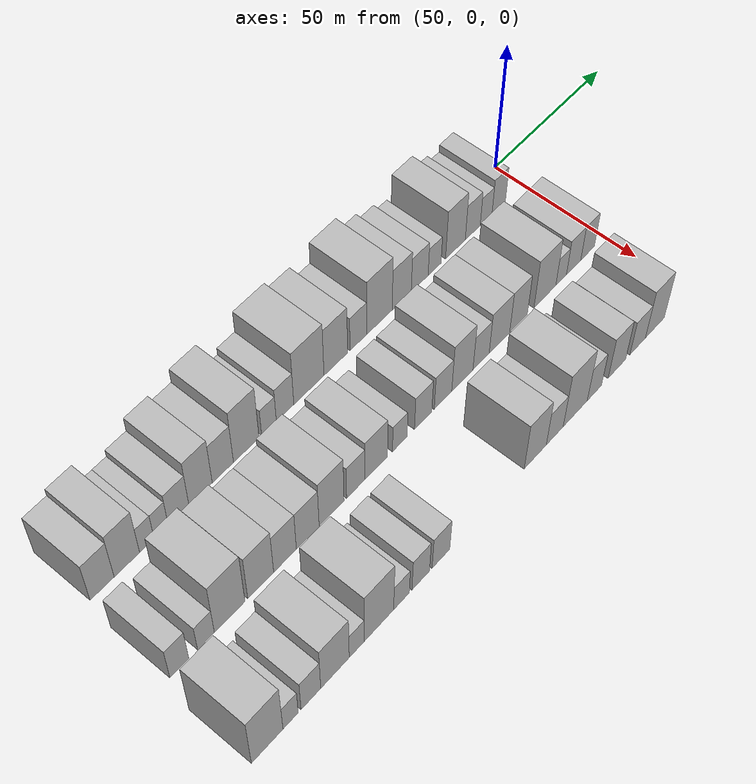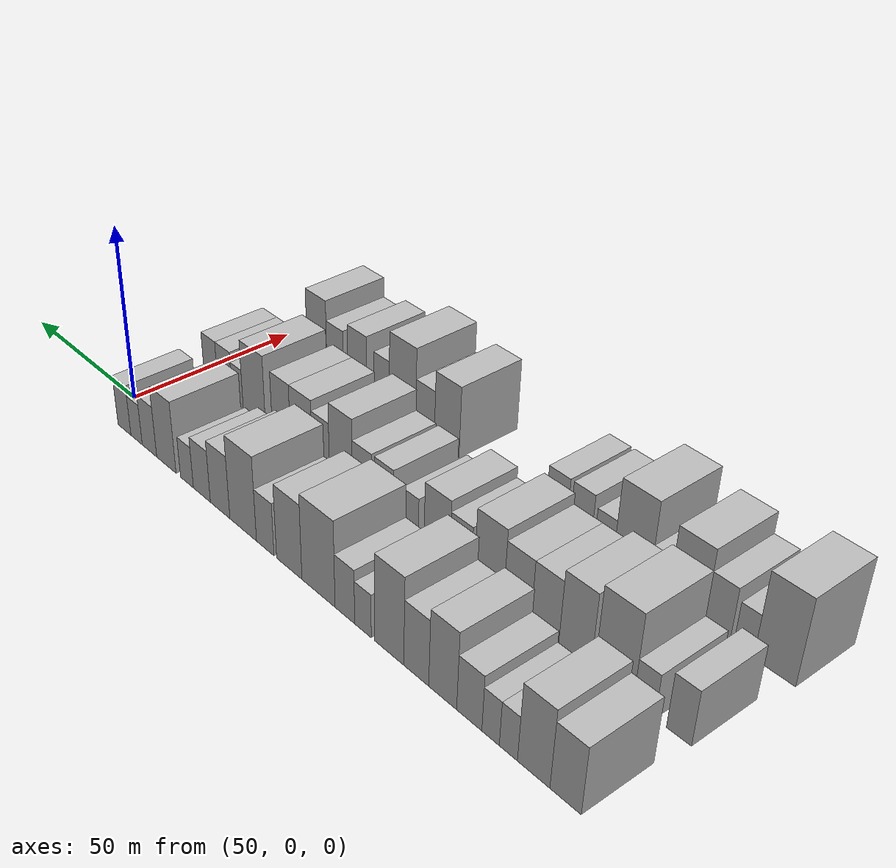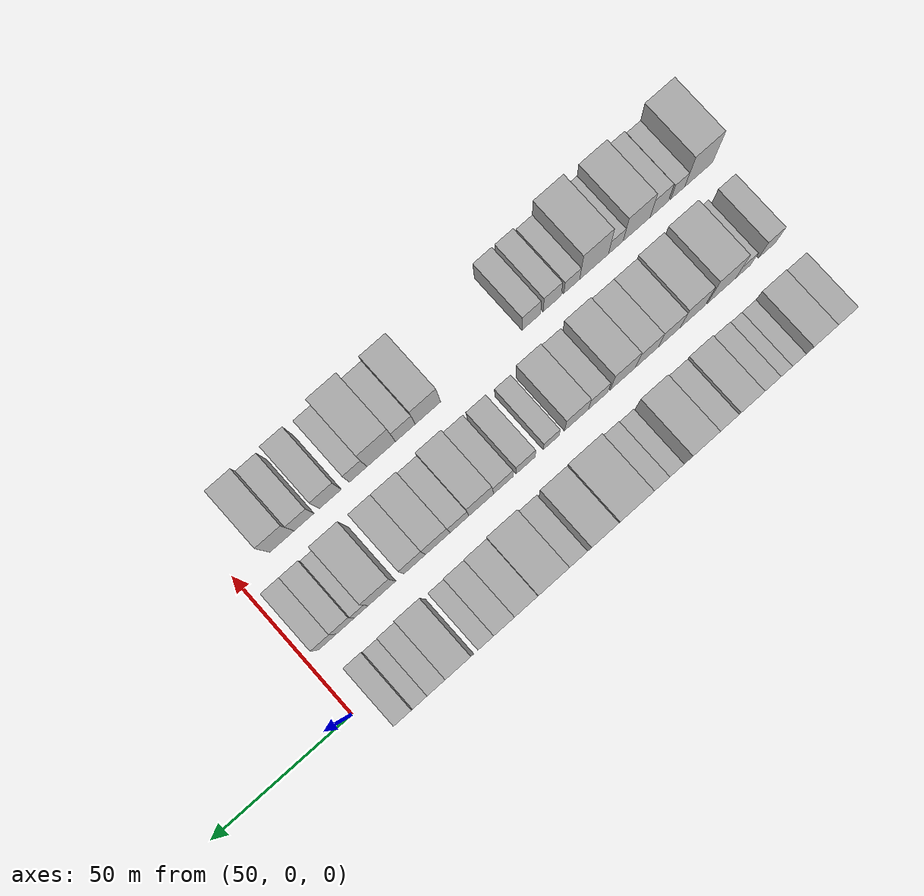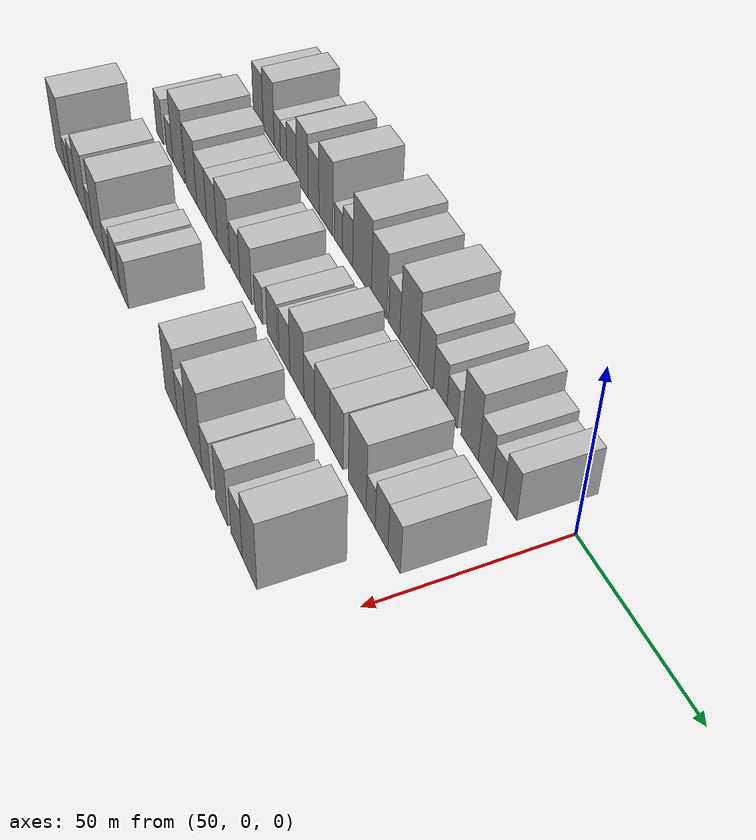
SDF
<sdf version="1.6">
 <world name="default">
  <model name="building_19">
   <static>1</static>
   <pose>50.0000 -168.9221 0 0.000000 0.000000 0.000000</pose>
   <link name="link">
    <pose>0 0 9.00 0 0 0</pose>
    <collision name="collision"><geometry><box><size>20.0000 8.2570 18.0000</size></box></geometry></collision>
    <visual name="visual">
     <cast_shadows>0</cast_shadows>
     <geometry><box><size>20.0000 8.2570 18.0000</size></box></geometry>
     <material>
      <script>
       <uri>model://HANNAS_wall/materials/scripts</uri>
       <uri>model://HANNAS_wall/materials/textures</uri>
       <name>vrc/HANNAS_wall</name>
      </script>
     </material>
    </visual>
   </link>
  </model>
  <model name="building_20">
   <static>1</static>
   <pose>50.0000 -160.3604 0 0.000000 0.000000 0.000000</pose>
   <link name="link">
    <pose>0 0 10.50 0 0 0</pose>
    <collision name="collision"><geometry><box><size>20.0000 8.8665 21.0000</size></box></geometry></collision>
    <visual name="visual">
     <cast_shadows>0</cast_shadows>
     <geometry><box><size>20.0000 8.8665 21.0000</size></box></geometry>
     <material>
      <script>
       <uri>model://HANNAS_wall/materials/scripts</uri>
       <uri>model://HANNAS_wall/materials/textures</uri>
       <name>vrc/HANNAS_wall</name>
      </script>
     </material>
    </visual>
   </link>
  </model>
  <model name="building_21">
   <static>1</static>
   <pose>50.0000 -153.3764 0 0.000000 0.000000 0.000000</pose>
   <link name="link">
    <pose>0 0 6.00 0 0 0</pose>
    <collision name="collision"><geometry><box><size>20.0000 5.1015 12.0000</size></box></geometry></collision>
    <visual name="visual">
     <cast_shadows>0</cast_shadows>
     <geometry><box><size>20.0000 5.1015 12.0000</size></box></geometry>
     <material>
      <script>
       <uri>model://HANNAS_wall/materials/scripts</uri>
       <uri>model://HANNAS_wall/materials/textures</uri>
       <name>vrc/HANNAS_wall</name>
      </script>
     </material>
    </visual>
   </link>
  </model>
  <model name="building_22">
   <static>1</static>
   <pose>50.0000 -148.3081 0 0.000000 0.000000 0.000000</pose>
   <link name="link">
    <pose>0 0 6.00 0 0 0</pose>
    <collision name="collision"><geometry><box><size>20.0000 5.0352 12.0000</size></box></geometry></collision>
    <visual name="visual">
     <cast_shadows>0</cast_shadows>
     <geometry><box><size>20.0000 5.0352 12.0000</size></box></geometry>
     <material>
      <script>
       <uri>model://HANNAS_wall/materials/scripts</uri>
       <uri>model://HANNAS_wall/materials/textures</uri>
       <name>vrc/HANNAS_wall</name>
      </script>
     </material>
    </visual>
   </link>
  </model>
  <model name="building_23">
   <static>1</static>
   <pose>50.0000 -142.0595 0 0.000000 0.000000 0.000000</pose>
   <link name="link">
    <pose>0 0 7.50 0 0 0</pose>
    <collision name="collision"><geometry><box><size>20.0000 7.4621 15.0000</size></box></geometry></collision>
    <visual name="visual">
     <cast_shadows>0</cast_shadows>
     <geometry><box><size>20.0000 7.4621 15.0000</size></box></geometry>
     <material>
      <script>
       <uri>model://HANNAS_wall/materials/scripts</uri>
       <uri>model://HANNAS_wall/materials/textures</uri>
       <name>vrc/HANNAS_wall</name>
      </script>
     </material>
    </visual>
   </link>
  </model>
  <model name="building_24">
   <static>1</static>
   <pose>50.0000 -134.0464 0 0.000000 0.000000 0.000000</pose>
   <link name="link">
    <pose>0 0 10.50 0 0 0</pose>
    <collision name="collision"><geometry><box><size>20.0000 8.5641 21.0000</size></box></geometry></collision>
    <visual name="visual">
     <cast_shadows>0</cast_shadows>
     <geometry><box><size>20.0000 8.5641 21.0000</size></box></geometry>
     <material>
      <script>
       <uri>model://HANNAS_wall/materials/scripts</uri>
       <uri>model://HANNAS_wall/materials/textures</uri>
       <name>vrc/HANNAS_wall</name>
      </script>
     </material>
    </visual>
   </link>
  </model>
  <model name="building_25">
   <static>1</static>
   <pose>50.0000 -125.8016 0 0.000000 0.000000 0.000000</pose>
   <link name="link">
    <pose>0 0 9.00 0 0 0</pose>
    <collision name="collision"><geometry><box><size>20.0000 7.9255 18.0000</size></box></geometry></collision>
    <visual name="visual">
     <cast_shadows>0</cast_shadows>
     <geometry><box><size>20.0000 7.9255 18.0000</size></box></geometry>
     <material>
      <script>
       <uri>model://HANNAS_wall/materials/scripts</uri>
       <uri>model://HANNAS_wall/materials/textures</uri>
       <name>vrc/HANNAS_wall</name>
      </script>
     </material>
    </visual>
   </link>
  </model>
  <model name="building_26">
   <static>1</static>
   <pose>50.0000 -116.9919 0 0.000000 0.000000 0.000000</pose>
   <link name="link">
    <pose>0 0 12.00 0 0 0</pose>
    <collision name="collision"><geometry><box><size>20.0000 9.6940 24.0000</size></box></geometry></collision>
    <visual name="visual">
     <cast_shadows>0</cast_shadows>
     <geometry><box><size>20.0000 9.6940 24.0000</size></box></geometry>
     <material>
      <script>
       <uri>model://HANNAS_wall/materials/scripts</uri>
       <uri>model://HANNAS_wall/materials/textures</uri>
       <name>vrc/HANNAS_wall</name>
      </script>
     </material>
    </visual>
   </link>
  </model>
  <model name="building_27">
   <static>1</static>
   <pose>50.0000 -108.3134 0 0.000000 0.000000 0.000000</pose>
   <link name="link">
    <pose>0 0 6.00 0 0 0</pose>
    <collision name="collision"><geometry><box><size>20.0000 5.6629 12.0000</size></box></geometry></collision>
    <visual name="visual">
     <cast_shadows>0</cast_shadows>
     <geometry><box><size>20.0000 5.6629 12.0000</size></box></geometry>
     <material>
      <script>
       <uri>model://HANNAS_wall/materials/scripts</uri>
       <uri>model://HANNAS_wall/materials/textures</uri>
       <name>vrc/HANNAS_wall</name>
      </script>
     </material>
    </visual>
   </link>
  </model>
  <model name="building_28">
   <static>1</static>
   <pose>50.0000 -102.0696 0 0.000000 0.000000 0.000000</pose>
   <link name="link">
    <pose>0 0 7.50 0 0 0</pose>
    <collision name="collision"><geometry><box><size>20.0000 6.8247 15.0000</size></box></geometry></collision>
    <visual name="visual">
     <cast_shadows>0</cast_shadows>
     <geometry><box><size>20.0000 6.8247 15.0000</size></box></geometry>
     <material>
      <script>
       <uri>model://HANNAS_wall/materials/scripts</uri>
       <uri>model://HANNAS_wall/materials/textures</uri>
       <name>vrc/HANNAS_wall</name>
      </script>
     </material>
    </visual>
   </link>
  </model>
  <model name="building_29">
   <static>1</static>
   <pose>50.0000 -92.6623 0 0.000000 0.000000 0.000000</pose>
   <link name="link">
    <pose>0 0 12.00 0 0 0</pose>
    <collision name="collision"><geometry><box><size>20.0000 11.9899 24.0000</size></box></geometry></collision>
    <visual name="visual">
     <cast_shadows>0</cast_shadows>
     <geometry><box><size>20.0000 11.9899 24.0000</size></box></geometry>
     <material>
      <script>
       <uri>model://HANNAS_wall/materials/scripts</uri>
       <uri>model://HANNAS_wall/materials/textures</uri>
       <name>vrc/HANNAS_wall</name>
      </script>
     </material>
    </visual>
   </link>
  </model>
  <model name="building_30">
   <static>1</static>
   <pose>50.0000 -81.8730 0 0.000000 0.000000 0.000000</pose>
   <link name="link">
    <pose>0 0 10.50 0 0 0</pose>
    <collision name="collision"><geometry><box><size>20.0000 9.5886 21.0000</size></box></geometry></collision>
    <visual name="visual">
     <cast_shadows>0</cast_shadows>
     <geometry><box><size>20.0000 9.5886 21.0000</size></box></geometry>
     <material>
      <script>
       <uri>model://HANNAS_wall/materials/scripts</uri>
       <uri>model://HANNAS_wall/materials/textures</uri>
       <name>vrc/HANNAS_wall</name>
      </script>
     </material>
    </visual>
   </link>
  </model>
  <model name="building_31">
   <static>1</static>
   <pose>50.0000 -72.6580 0 0.000000 0.000000 0.000000</pose>
   <link name="link">
    <pose>0 0 7.50 0 0 0</pose>
    <collision name="collision"><geometry><box><size>20.0000 6.8415 15.0000</size></box></geometry></collision>
    <visual name="visual">
     <cast_shadows>0</cast_shadows>
     <geometry><box><size>20.0000 6.8415 15.0000</size></box></geometry>
     <material>
      <script>
       <uri>model://HANNAS_wall/materials/scripts</uri>
       <uri>model://HANNAS_wall/materials/textures</uri>
       <name>vrc/HANNAS_wall</name>
      </script>
     </material>
    </visual>
   </link>
  </model>
  <model name="building_32">
   <static>1</static>
   <pose>50.0000 -63.8661 0 0.000000 0.000000 0.000000</pose>
   <link name="link">
    <pose>0 0 12.00 0 0 0</pose>
    <collision name="collision"><geometry><box><size>20.0000 10.7423 24.0000</size></box></geometry></collision>
    <visual name="visual">
     <cast_shadows>0</cast_shadows>
     <geometry><box><size>20.0000 10.7423 24.0000</size></box></geometry>
     <material>
      <script>
       <uri>model://HANNAS_wall/materials/scripts</uri>
       <uri>model://HANNAS_wall/materials/textures</uri>
       <name>vrc/HANNAS_wall</name>
      </script>
     </material>
    </visual>
   </link>
  </model>
  <model name="building_33">
   <static>1</static>
   <pose>50.0000 -54.4103 0 0.000000 0.000000 0.000000</pose>
   <link name="link">
    <pose>0 0 9.00 0 0 0</pose>
    <collision name="collision"><geometry><box><size>20.0000 8.1693 18.0000</size></box></geometry></collision>
    <visual name="visual">
     <cast_shadows>0</cast_shadows>
     <geometry><box><size>20.0000 8.1693 18.0000</size></box></geometry>
     <material>
      <script>
       <uri>model://HANNAS_wall/materials/scripts</uri>
       <uri>model://HANNAS_wall/materials/textures</uri>
       <name>vrc/HANNAS_wall</name>
      </script>
     </material>
    </visual>
   </link>
  </model>
  <model name="building_34">
   <static>1</static>
   <pose>50.0000 -46.6696 0 0.000000 0.000000 0.000000</pose>
   <link name="link">
    <pose>0 0 7.50 0 0 0</pose>
    <collision name="collision"><geometry><box><size>20.0000 7.3122 15.0000</size></box></geometry></collision>
    <visual name="visual">
     <cast_shadows>0</cast_shadows>
     <geometry><box><size>20.0000 7.3122 15.0000</size></box></geometry>
     <material>
      <script>
       <uri>model://HANNAS_wall/materials/scripts</uri>
       <uri>model://HANNAS_wall/materials/textures</uri>
       <name>vrc/HANNAS_wall</name>
      </script>
     </material>
    </visual>
   </link>
  </model>
  <model name="building_35">
   <static>1</static>
   <pose>50.0000 -40.1810 0 0.000000 0.000000 0.000000</pose>
   <link name="link">
    <pose>0 0 6.00 0 0 0</pose>
    <collision name="collision"><geometry><box><size>20.0000 5.6649 12.0000</size></box></geometry></collision>
    <visual name="visual">
     <cast_shadows>0</cast_shadows>
     <geometry><box><size>20.0000 5.6649 12.0000</size></box></geometry>
     <material>
      <script>
       <uri>model://HANNAS_wall/materials/scripts</uri>
       <uri>model://HANNAS_wall/materials/textures</uri>
       <name>vrc/HANNAS_wall</name>
      </script>
     </material>
    </visual>
   </link>
  </model>
  <model name="building_36">
   <static>1</static>
   <pose>50.0000 -30.9514 0 0.000000 0.000000 0.000000</pose>
   <link name="link">
    <pose>0 0 10.50 0 0 0</pose>
    <collision name="collision"><geometry><box><size>20.0000 8.7943 21.0000</size></box></geometry></collision>
    <visual name="visual">
     <cast_shadows>0</cast_shadows>
     <geometry><box><size>20.0000 8.7943 21.0000</size></box></geometry>
     <material>
      <script>
       <uri>model://HANNAS_wall/materials/scripts</uri>
       <uri>model://HANNAS_wall/materials/textures</uri>
       <name>vrc/HANNAS_wall</name>
      </script>
     </material>
    </visual>
   </link>
  </model>
  <model name="building_37">
   <static>1</static>
   <pose>50.0000 -23.1737 0 0.000000 0.000000 0.000000</pose>
   <link name="link">
    <pose>0 0 7.50 0 0 0</pose>
    <collision name="collision"><geometry><box><size>20.0000 6.7610 15.0000</size></box></geometry></collision>
    <visual name="visual">
     <cast_shadows>0</cast_shadows>
     <geometry><box><size>20.0000 6.7610 15.0000</size></box></geometry>
     <material>
      <script>
       <uri>model://HANNAS_wall/materials/scripts</uri>
       <uri>model://HANNAS_wall/materials/textures</uri>
       <name>vrc/HANNAS_wall</name>
      </script>
     </material>
    </visual>
   </link>
  </model>
  <model name="building_38">
   <static>1</static>
   <pose>50.0000 -17.0934 0 0.000000 0.000000 0.000000</pose>
   <link name="link">
    <pose>0 0 6.00 0 0 0</pose>
    <collision name="collision"><geometry><box><size>20.0000 5.3997 12.0000</size></box></geometry></collision>
    <visual name="visual">
     <cast_shadows>0</cast_shadows>
     <geometry><box><size>20.0000 5.3997 12.0000</size></box></geometry>
     <material>
      <script>
       <uri>model://HANNAS_wall/materials/scripts</uri>
       <uri>model://HANNAS_wall/materials/textures</uri>
       <name>vrc/HANNAS_wall</name>
      </script>
     </material>
    </visual>
   </link>
  </model>
  <model name="building_39">
   <static>1</static>
   <pose>50.0000 -11.2856 0 0.000000 0.000000 0.000000</pose>
   <link name="link">
    <pose>0 0 7.50 0 0 0</pose>
    <collision name="collision"><geometry><box><size>20.0000 6.2158 15.0000</size></box></geometry></collision>
    <visual name="visual">
     <cast_shadows>0</cast_shadows>
     <geometry><box><size>20.0000 6.2158 15.0000</size></box></geometry>
     <material>
      <script>
       <uri>model://HANNAS_wall/materials/scripts</uri>
       <uri>model://HANNAS_wall/materials/textures</uri>
       <name>vrc/HANNAS_wall</name>
      </script>
     </material>
    </visual>
   </link>
  </model>
  <model name="building_95">
   <static>1</static>
   <pose>79.0000 -171.5292 0 0.000000 0.000000 0.000000</pose>
   <link name="link">
    <pose>0 0 7.50 0 0 0</pose>
    <collision name="collision"><geometry><box><size>20.0000 6.4951 15.0000</size></box></geometry></collision>
    <visual name="visual">
     <cast_shadows>0</cast_shadows>
     <geometry><box><size>20.0000 6.4951 15.0000</size></box></geometry>
     <material>
      <script>
       <uri>model://HANNAS_wall/materials/scripts</uri>
       <uri>model://HANNAS_wall/materials/textures</uri>
       <name>vrc/HANNAS_wall</name>
      </script>
     </material>
    </visual>
   </link>
  </model>
  <model name="building_96">
   <static>1</static>
   <pose>79.0000 -162.3562 0 0.000000 0.000000 0.000000</pose>
   <link name="link">
    <pose>0 0 6.00 0 0 0</pose>
    <collision name="collision"><geometry><box><size>20.0000 5.8509 12.0000</size></box></geometry></collision>
    <visual name="visual">
     <cast_shadows>0</cast_shadows>
     <geometry><box><size>20.0000 5.8509 12.0000</size></box></geometry>
     <material>
      <script>
       <uri>model://HANNAS_wall/materials/scripts</uri>
       <uri>model://HANNAS_wall/materials/textures</uri>
       <name>vrc/HANNAS_wall</name>
      </script>
     </material>
    </visual>
   </link>
  </model>
  <model name="building_97">
   <static>1</static>
   <pose>79.0000 -154.0120 0 0.000000 0.000000 0.000000</pose>
   <link name="link">
    <pose>0 0 12.00 0 0 0</pose>
    <collision name="collision"><geometry><box><size>20.0000 10.8375 24.0000</size></box></geometry></collision>
    <visual name="visual">
     <cast_shadows>0</cast_shadows>
     <geometry><box><size>20.0000 10.8375 24.0000</size></box></geometry>
     <material>
      <script>
       <uri>model://HANNAS_wall/materials/scripts</uri>
       <uri>model://HANNAS_wall/materials/textures</uri>
       <name>vrc/HANNAS_wall</name>
      </script>
     </material>
    </visual>
   </link>
  </model>
  <model name="building_98">
   <static>1</static>
   <pose>79.0000 -142.8951 0 0.000000 0.000000 0.000000</pose>
   <link name="link">
    <pose>0 0 10.50 0 0 0</pose>
    <collision name="collision"><geometry><box><size>20.0000 9.3964 21.0000</size></box></geometry></collision>
    <visual name="visual">
     <cast_shadows>0</cast_shadows>
     <geometry><box><size>20.0000 9.3964 21.0000</size></box></geometry>
     <material>
      <script>
       <uri>model://HANNAS_wall/materials/scripts</uri>
       <uri>model://HANNAS_wall/materials/textures</uri>
       <name>vrc/HANNAS_wall</name>
      </script>
     </material>
    </visual>
   </link>
  </model>
  <model name="building_99">
   <static>1</static>
   <pose>79.0000 -134.0089 0 0.000000 0.000000 0.000000</pose>
   <link name="link">
    <pose>0 0 9.00 0 0 0</pose>
    <collision name="collision"><geometry><box><size>20.0000 8.3759 18.0000</size></box></geometry></collision>
    <visual name="visual">
     <cast_shadows>0</cast_shadows>
     <geometry><box><size>20.0000 8.3759 18.0000</size></box></geometry>
     <material>
      <script>
       <uri>model://HANNAS_wall/materials/scripts</uri>
       <uri>model://HANNAS_wall/materials/textures</uri>
       <name>vrc/HANNAS_wall</name>
      </script>
     </material>
    </visual>
   </link>
  </model>
  <model name="building_100">
   <static>1</static>
   <pose>79.0000 -125.5481 0 0.000000 0.000000 0.000000</pose>
   <link name="link">
    <pose>0 0 9.00 0 0 0</pose>
    <collision name="collision"><geometry><box><size>20.0000 8.5457 18.0000</size></box></geometry></collision>
    <visual name="visual">
     <cast_shadows>0</cast_shadows>
     <geometry><box><size>20.0000 8.5457 18.0000</size></box></geometry>
     <material>
      <script>
       <uri>model://HANNAS_wall/materials/scripts</uri>
       <uri>model://HANNAS_wall/materials/textures</uri>
       <name>vrc/HANNAS_wall</name>
      </script>
     </material>
    </visual>
   </link>
  </model>
  <model name="building_101">
   <static>1</static>
   <pose>79.0000 -116.5245 0 0.000000 0.000000 0.000000</pose>
   <link name="link">
    <pose>0 0 10.50 0 0 0</pose>
    <collision name="collision"><geometry><box><size>20.0000 9.5016 21.0000</size></box></geometry></collision>
    <visual name="visual">
     <cast_shadows>0</cast_shadows>
     <geometry><box><size>20.0000 9.5016 21.0000</size></box></geometry>
     <material>
      <script>
       <uri>model://HANNAS_wall/materials/scripts</uri>
       <uri>model://HANNAS_wall/materials/textures</uri>
       <name>vrc/HANNAS_wall</name>
      </script>
     </material>
    </visual>
   </link>
  </model>
  <model name="building_102">
   <static>1</static>
   <pose>79.0000 -107.1797 0 0.000000 0.000000 0.000000</pose>
   <link name="link">
    <pose>0 0 7.50 0 0 0</pose>
    <collision name="collision"><geometry><box><size>20.0000 7.1881 15.0000</size></box></geometry></collision>
    <visual name="visual">
     <cast_shadows>0</cast_shadows>
     <geometry><box><size>20.0000 7.1881 15.0000</size></box></geometry>
     <material>
      <script>
       <uri>model://HANNAS_wall/materials/scripts</uri>
       <uri>model://HANNAS_wall/materials/textures</uri>
       <name>vrc/HANNAS_wall</name>
      </script>
     </material>
    </visual>
   </link>
  </model>
  <model name="building_103">
   <static>1</static>
   <pose>79.0000 -99.1475 0 0.000000 0.000000 0.000000</pose>
   <link name="link">
    <pose>0 0 9.00 0 0 0</pose>
    <collision name="collision"><geometry><box><size>20.0000 8.8762 18.0000</size></box></geometry></collision>
    <visual name="visual">
     <cast_shadows>0</cast_shadows>
     <geometry><box><size>20.0000 8.8762 18.0000</size></box></geometry>
     <material>
      <script>
       <uri>model://HANNAS_wall/materials/scripts</uri>
       <uri>model://HANNAS_wall/materials/textures</uri>
       <name>vrc/HANNAS_wall</name>
      </script>
     </material>
    </visual>
   </link>
  </model>
  <model name="building_104">
   <static>1</static>
   <pose>79.0000 -89.7583 0 0.000000 0.000000 0.000000</pose>
   <link name="link">
    <pose>0 0 6.00 0 0 0</pose>
    <collision name="collision"><geometry><box><size>20.0000 5.9024 12.0000</size></box></geometry></collision>
    <visual name="visual">
     <cast_shadows>0</cast_shadows>
     <geometry><box><size>20.0000 5.9024 12.0000</size></box></geometry>
     <material>
      <script>
       <uri>model://HANNAS_wall/materials/scripts</uri>
       <uri>model://HANNAS_wall/materials/textures</uri>
       <name>vrc/HANNAS_wall</name>
      </script>
     </material>
    </visual>
   </link>
  </model>
  <model name="building_105">
   <static>1</static>
   <pose>79.0000 -80.2482 0 0.000000 0.000000 0.000000</pose>
   <link name="link">
    <pose>0 0 7.50 0 0 0</pose>
    <collision name="collision"><geometry><box><size>20.0000 7.1178 15.0000</size></box></geometry></collision>
    <visual name="visual">
     <cast_shadows>0</cast_shadows>
     <geometry><box><size>20.0000 7.1178 15.0000</size></box></geometry>
     <material>
      <script>
       <uri>model://HANNAS_wall/materials/scripts</uri>
       <uri>model://HANNAS_wall/materials/textures</uri>
       <name>vrc/HANNAS_wall</name>
      </script>
     </material>
    </visual>
   </link>
  </model>
  <model name="building_106">
   <static>1</static>
   <pose>79.0000 -72.0410 0 0.000000 0.000000 0.000000</pose>
   <link name="link">
    <pose>0 0 7.50 0 0 0</pose>
    <collision name="collision"><geometry><box><size>20.0000 7.2965 15.0000</size></box></geometry></collision>
    <visual name="visual">
     <cast_shadows>0</cast_shadows>
     <geometry><box><size>20.0000 7.2965 15.0000</size></box></geometry>
     <material>
      <script>
       <uri>model://HANNAS_wall/materials/scripts</uri>
       <uri>model://HANNAS_wall/materials/textures</uri>
       <name>vrc/HANNAS_wall</name>
      </script>
     </material>
    </visual>
   </link>
  </model>
  <model name="building_107">
   <static>1</static>
   <pose>79.0000 -63.8795 0 0.000000 0.000000 0.000000</pose>
   <link name="link">
    <pose>0 0 10.50 0 0 0</pose>
    <collision name="collision"><geometry><box><size>20.0000 9.0265 21.0000</size></box></geometry></collision>
    <visual name="visual">
     <cast_shadows>0</cast_shadows>
     <geometry><box><size>20.0000 9.0265 21.0000</size></box></geometry>
     <material>
      <script>
       <uri>model://HANNAS_wall/materials/scripts</uri>
       <uri>model://HANNAS_wall/materials/textures</uri>
       <name>vrc/HANNAS_wall</name>
      </script>
     </material>
    </visual>
   </link>
  </model>
  <model name="building_108">
   <static>1</static>
   <pose>79.0000 -55.8801 0 0.000000 0.000000 0.000000</pose>
   <link name="link">
    <pose>0 0 7.50 0 0 0</pose>
    <collision name="collision"><geometry><box><size>20.0000 6.9723 15.0000</size></box></geometry></collision>
    <visual name="visual">
     <cast_shadows>0</cast_shadows>
     <geometry><box><size>20.0000 6.9723 15.0000</size></box></geometry>
     <material>
      <script>
       <uri>model://HANNAS_wall/materials/scripts</uri>
       <uri>model://HANNAS_wall/materials/textures</uri>
       <name>vrc/HANNAS_wall</name>
      </script>
     </material>
    </visual>
   </link>
  </model>
  <model name="building_109">
   <static>1</static>
   <pose>79.0000 -47.9068 0 0.000000 0.000000 0.000000</pose>
   <link name="link">
    <pose>0 0 9.00 0 0 0</pose>
    <collision name="collision"><geometry><box><size>20.0000 8.9744 18.0000</size></box></geometry></collision>
    <visual name="visual">
     <cast_shadows>0</cast_shadows>
     <geometry><box><size>20.0000 8.9744 18.0000</size></box></geometry>
     <material>
      <script>
       <uri>model://HANNAS_wall/materials/scripts</uri>
       <uri>model://HANNAS_wall/materials/textures</uri>
       <name>vrc/HANNAS_wall</name>
      </script>
     </material>
    </visual>
   </link>
  </model>
  <model name="building_110">
   <static>1</static>
   <pose>79.0000 -39.5093 0 0.000000 0.000000 0.000000</pose>
   <link name="link">
    <pose>0 0 9.00 0 0 0</pose>
    <collision name="collision"><geometry><box><size>20.0000 7.8206 18.0000</size></box></geometry></collision>
    <visual name="visual">
     <cast_shadows>0</cast_shadows>
     <geometry><box><size>20.0000 7.8206 18.0000</size></box></geometry>
     <material>
      <script>
       <uri>model://HANNAS_wall/materials/scripts</uri>
       <uri>model://HANNAS_wall/materials/textures</uri>
       <name>vrc/HANNAS_wall</name>
      </script>
     </material>
    </visual>
   </link>
  </model>
  <model name="building_111">
   <static>1</static>
   <pose>79.0000 -27.6408 0 0.000000 0.000000 0.000000</pose>
   <link name="link">
    <pose>0 0 10.50 0 0 0</pose>
    <collision name="collision"><geometry><box><size>20.0000 9.9164 21.0000</size></box></geometry></collision>
    <visual name="visual">
     <cast_shadows>0</cast_shadows>
     <geometry><box><size>20.0000 9.9164 21.0000</size></box></geometry>
     <material>
      <script>
       <uri>model://HANNAS_wall/materials/scripts</uri>
       <uri>model://HANNAS_wall/materials/textures</uri>
       <name>vrc/HANNAS_wall</name>
      </script>
     </material>
    </visual>
   </link>
  </model>
  <model name="building_112">
   <static>1</static>
   <pose>79.0000 -20.2354 0 0.000000 0.000000 0.000000</pose>
   <link name="link">
    <pose>0 0 6.00 0 0 0</pose>
    <collision name="collision"><geometry><box><size>20.0000 4.8944 12.0000</size></box></geometry></collision>
    <visual name="visual">
     <cast_shadows>0</cast_shadows>
     <geometry><box><size>20.0000 4.8944 12.0000</size></box></geometry>
     <material>
      <script>
       <uri>model://HANNAS_wall/materials/scripts</uri>
       <uri>model://HANNAS_wall/materials/textures</uri>
       <name>vrc/HANNAS_wall</name>
      </script>
     </material>
    </visual>
   </link>
  </model>
  <model name="building_113">
   <static>1</static>
   <pose>79.0000 -14.4504 0 0.000000 0.000000 0.000000</pose>
   <link name="link">
    <pose>0 0 7.50 0 0 0</pose>
    <collision name="collision"><geometry><box><size>20.0000 6.6755 15.0000</size></box></geometry></collision>
    <visual name="visual">
     <cast_shadows>0</cast_shadows>
     <geometry><box><size>20.0000 6.6755 15.0000</size></box></geometry>
     <material>
      <script>
       <uri>model://HANNAS_wall/materials/scripts</uri>
       <uri>model://HANNAS_wall/materials/textures</uri>
       <name>vrc/HANNAS_wall</name>
      </script>
     </material>
    </visual>
   </link>
  </model>
  <model name="building_114">
   <static>1</static>
   <pose>79.0000 -7.9089 0 0.000000 0.000000 0.000000</pose>
   <link name="link">
    <pose>0 0 7.50 0 0 0</pose>
    <collision name="collision"><geometry><box><size>20.0000 6.4076 15.0000</size></box></geometry></collision>
    <visual name="visual">
     <cast_shadows>0</cast_shadows>
     <geometry><box><size>20.0000 6.4076 15.0000</size></box></geometry>
     <material>
      <script>
       <uri>model://HANNAS_wall/materials/scripts</uri>
       <uri>model://HANNAS_wall/materials/textures</uri>
       <name>vrc/HANNAS_wall</name>
      </script>
     </material>
    </visual>
   </link>
  </model>
  <model name="building_173">
   <static>1</static>
   <pose>108.0000 -172.0914 0 0.000000 0.000000 0.000000</pose>
   <link name="link">
    <pose>0 0 12.00 0 0 0</pose>
    <collision name="collision"><geometry><box><size>20.0000 10.8526 24.0000</size></box></geometry></collision>
    <visual name="visual">
     <cast_shadows>0</cast_shadows>
     <geometry><box><size>20.0000 10.8526 24.0000</size></box></geometry>
     <material>
      <script>
       <uri>model://HANNAS_wall/materials/scripts</uri>
       <uri>model://HANNAS_wall/materials/textures</uri>
       <name>vrc/HANNAS_wall</name>
      </script>
     </material>
    </visual>
   </link>
  </model>
  <model name="building_174">
   <static>1</static>
   <pose>108.0000 -164.0118 0 0.000000 0.000000 0.000000</pose>
   <link name="link">
    <pose>0 0 6.00 0 0 0</pose>
    <collision name="collision"><geometry><box><size>20.0000 5.3066 12.0000</size></box></geometry></collision>
    <visual name="visual">
     <cast_shadows>0</cast_shadows>
     <geometry><box><size>20.0000 5.3066 12.0000</size></box></geometry>
     <material>
      <script>
       <uri>model://HANNAS_wall/materials/scripts</uri>
       <uri>model://HANNAS_wall/materials/textures</uri>
       <name>vrc/HANNAS_wall</name>
      </script>
     </material>
    </visual>
   </link>
  </model>
  <model name="building_175">
   <static>1</static>
   <pose>108.0000 -156.8743 0 0.000000 0.000000 0.000000</pose>
   <link name="link">
    <pose>0 0 7.50 0 0 0</pose>
    <collision name="collision"><geometry><box><size>20.0000 6.9684 15.0000</size></box></geometry></collision>
    <visual name="visual">
     <cast_shadows>0</cast_shadows>
     <geometry><box><size>20.0000 6.9684 15.0000</size></box></geometry>
     <material>
      <script>
       <uri>model://HANNAS_wall/materials/scripts</uri>
       <uri>model://HANNAS_wall/materials/textures</uri>
       <name>vrc/HANNAS_wall</name>
      </script>
     </material>
    </visual>
   </link>
  </model>
  <model name="building_176">
   <static>1</static>
   <pose>108.0000 -148.2506 0 0.000000 0.000000 0.000000</pose>
   <link name="link">
    <pose>0 0 10.50 0 0 0</pose>
    <collision name="collision"><geometry><box><size>20.0000 10.2790 21.0000</size></box></geometry></collision>
    <visual name="visual">
     <cast_shadows>0</cast_shadows>
     <geometry><box><size>20.0000 10.2790 21.0000</size></box></geometry>
     <material>
      <script>
       <uri>model://HANNAS_wall/materials/scripts</uri>
       <uri>model://HANNAS_wall/materials/textures</uri>
       <name>vrc/HANNAS_wall</name>
      </script>
     </material>
    </visual>
   </link>
  </model>
  <model name="building_177">
   <static>1</static>
   <pose>108.0000 -140.3294 0 0.000000 0.000000 0.000000</pose>
   <link name="link">
    <pose>0 0 6.00 0 0 0</pose>
    <collision name="collision"><geometry><box><size>20.0000 5.5635 12.0000</size></box></geometry></collision>
    <visual name="visual">
     <cast_shadows>0</cast_shadows>
     <geometry><box><size>20.0000 5.5635 12.0000</size></box></geometry>
     <material>
      <script>
       <uri>model://HANNAS_wall/materials/scripts</uri>
       <uri>model://HANNAS_wall/materials/textures</uri>
       <name>vrc/HANNAS_wall</name>
      </script>
     </material>
    </visual>
   </link>
  </model>
  <model name="building_178">
   <static>1</static>
   <pose>108.0000 -132.0789 0 0.000000 0.000000 0.000000</pose>
   <link name="link">
    <pose>0 0 12.00 0 0 0</pose>
    <collision name="collision"><geometry><box><size>20.0000 10.9374 24.0000</size></box></geometry></collision>
    <visual name="visual">
     <cast_shadows>0</cast_shadows>
     <geometry><box><size>20.0000 10.9374 24.0000</size></box></geometry>
     <material>
      <script>
       <uri>model://HANNAS_wall/materials/scripts</uri>
       <uri>model://HANNAS_wall/materials/textures</uri>
       <name>vrc/HANNAS_wall</name>
      </script>
     </material>
    </visual>
   </link>
  </model>
  <model name="building_179">
   <static>1</static>
   <pose>108.0000 -123.6213 0 0.000000 0.000000 0.000000</pose>
   <link name="link">
    <pose>0 0 6.00 0 0 0</pose>
    <collision name="collision"><geometry><box><size>20.0000 5.9778 12.0000</size></box></geometry></collision>
    <visual name="visual">
     <cast_shadows>0</cast_shadows>
     <geometry><box><size>20.0000 5.9778 12.0000</size></box></geometry>
     <material>
      <script>
       <uri>model://HANNAS_wall/materials/scripts</uri>
       <uri>model://HANNAS_wall/materials/textures</uri>
       <name>vrc/HANNAS_wall</name>
      </script>
     </material>
    </visual>
   </link>
  </model>
  <model name="building_180">
   <static>1</static>
   <pose>108.0000 -116.2474 0 0.000000 0.000000 0.000000</pose>
   <link name="link">
    <pose>0 0 7.50 0 0 0</pose>
    <collision name="collision"><geometry><box><size>20.0000 6.7701 15.0000</size></box></geometry></collision>
    <visual name="visual">
     <cast_shadows>0</cast_shadows>
     <geometry><box><size>20.0000 6.7701 15.0000</size></box></geometry>
     <material>
      <script>
       <uri>model://HANNAS_wall/materials/scripts</uri>
       <uri>model://HANNAS_wall/materials/textures</uri>
       <name>vrc/HANNAS_wall</name>
      </script>
     </material>
    </visual>
   </link>
  </model>
  <model name="building_181">
   <static>1</static>
   <pose>108.0000 -108.4014 0 0.000000 0.000000 0.000000</pose>
   <link name="link">
    <pose>0 0 7.50 0 0 0</pose>
    <collision name="collision"><geometry><box><size>20.0000 6.9218 15.0000</size></box></geometry></collision>
    <visual name="visual">
     <cast_shadows>0</cast_shadows>
     <geometry><box><size>20.0000 6.9218 15.0000</size></box></geometry>
     <material>
      <script>
       <uri>model://HANNAS_wall/materials/scripts</uri>
       <uri>model://HANNAS_wall/materials/textures</uri>
       <name>vrc/HANNAS_wall</name>
      </script>
     </material>
    </visual>
   </link>
  </model>
  <model name="building_182">
   <static>1</static>
   <pose>108.0000 -69.8821 0 0.000000 0.000000 0.000000</pose>
   <link name="link">
    <pose>0 0 10.50 0 0 0</pose>
    <collision name="collision"><geometry><box><size>20.0000 9.3723 21.0000</size></box></geometry></collision>
    <visual name="visual">
     <cast_shadows>0</cast_shadows>
     <geometry><box><size>20.0000 9.3723 21.0000</size></box></geometry>
     <material>
      <script>
       <uri>model://HANNAS_wall/materials/scripts</uri>
       <uri>model://HANNAS_wall/materials/textures</uri>
       <name>vrc/HANNAS_wall</name>
      </script>
     </material>
    </visual>
   </link>
  </model>
  <model name="building_183">
   <static>1</static>
   <pose>108.0000 -61.5522 0 0.000000 0.000000 0.000000</pose>
   <link name="link">
    <pose>0 0 7.50 0 0 0</pose>
    <collision name="collision"><geometry><box><size>20.0000 7.2875 15.0000</size></box></geometry></collision>
    <visual name="visual">
     <cast_shadows>0</cast_shadows>
     <geometry><box><size>20.0000 7.2875 15.0000</size></box></geometry>
     <material>
      <script>
       <uri>model://HANNAS_wall/materials/scripts</uri>
       <uri>model://HANNAS_wall/materials/textures</uri>
       <name>vrc/HANNAS_wall</name>
      </script>
     </material>
    </visual>
   </link>
  </model>
  <model name="building_184">
   <static>1</static>
   <pose>108.0000 -52.6414 0 0.000000 0.000000 0.000000</pose>
   <link name="link">
    <pose>0 0 12.00 0 0 0</pose>
    <collision name="collision"><geometry><box><size>20.0000 10.5342 24.0000</size></box></geometry></collision>
    <visual name="visual">
     <cast_shadows>0</cast_shadows>
     <geometry><box><size>20.0000 10.5342 24.0000</size></box></geometry>
     <material>
      <script>
       <uri>model://HANNAS_wall/materials/scripts</uri>
       <uri>model://HANNAS_wall/materials/textures</uri>
       <name>vrc/HANNAS_wall</name>
      </script>
     </material>
    </visual>
   </link>
  </model>
  <model name="building_185">
   <static>1</static>
   <pose>108.0000 -44.1844 0 0.000000 0.000000 0.000000</pose>
   <link name="link">
    <pose>0 0 7.50 0 0 0</pose>
    <collision name="collision"><geometry><box><size>20.0000 6.3797 15.0000</size></box></geometry></collision>
    <visual name="visual">
     <cast_shadows>0</cast_shadows>
     <geometry><box><size>20.0000 6.3797 15.0000</size></box></geometry>
     <material>
      <script>
       <uri>model://HANNAS_wall/materials/scripts</uri>
       <uri>model://HANNAS_wall/materials/textures</uri>
       <name>vrc/HANNAS_wall</name>
      </script>
     </material>
    </visual>
   </link>
  </model>
  <model name="building_186">
   <static>1</static>
   <pose>108.0000 -34.0344 0 0.000000 0.000000 0.000000</pose>
   <link name="link">
    <pose>0 0 9.00 0 0 0</pose>
    <collision name="collision"><geometry><box><size>20.0000 7.9204 18.0000</size></box></geometry></collision>
    <visual name="visual">
     <cast_shadows>0</cast_shadows>
     <geometry><box><size>20.0000 7.9204 18.0000</size></box></geometry>
     <material>
      <script>
       <uri>model://HANNAS_wall/materials/scripts</uri>
       <uri>model://HANNAS_wall/materials/textures</uri>
       <name>vrc/HANNAS_wall</name>
      </script>
     </material>
    </visual>
   </link>
  </model>
  <model name="building_187">
   <static>1</static>
   <pose>108.0000 -24.4825 0 0.000000 0.000000 0.000000</pose>
   <link name="link">
    <pose>0 0 7.50 0 0 0</pose>
    <collision name="collision"><geometry><box><size>20.0000 7.1833 15.0000</size></box></geometry></collision>
    <visual name="visual">
     <cast_shadows>0</cast_shadows>
     <geometry><box><size>20.0000 7.1833 15.0000</size></box></geometry>
     <material>
      <script>
       <uri>model://HANNAS_wall/materials/scripts</uri>
       <uri>model://HANNAS_wall/materials/textures</uri>
       <name>vrc/HANNAS_wall</name>
      </script>
     </material>
    </visual>
   </link>
  </model>
  <model name="building_188">
   <static>1</static>
   <pose>108.0000 -16.4748 0 0.000000 0.000000 0.000000</pose>
   <link name="link">
    <pose>0 0 10.50 0 0 0</pose>
    <collision name="collision"><geometry><box><size>20.0000 8.8323 21.0000</size></box></geometry></collision>
    <visual name="visual">
     <cast_shadows>0</cast_shadows>
     <geometry><box><size>20.0000 8.8323 21.0000</size></box></geometry>
     <material>
      <script>
       <uri>model://HANNAS_wall/materials/scripts</uri>
       <uri>model://HANNAS_wall/materials/textures</uri>
       <name>vrc/HANNAS_wall</name>
      </script>
     </material>
    </visual>
   </link>
  </model>
 </world>
</sdf>
